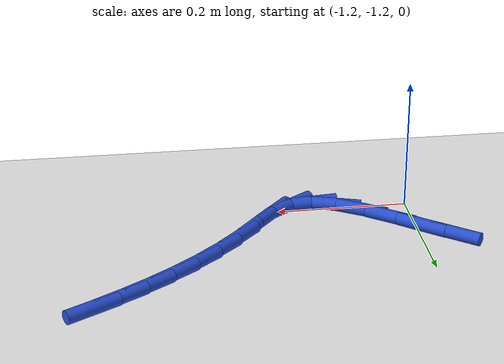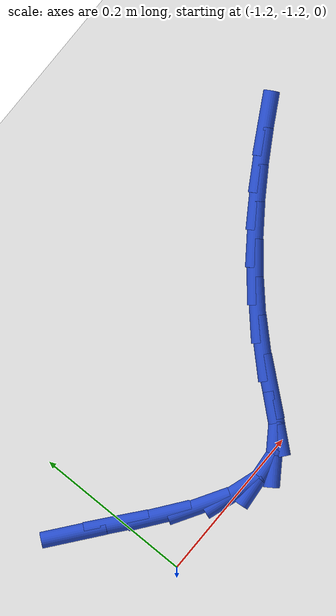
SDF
<sdf version="1.6">
 <world name="default">
  <model name="ground_plane">
   <static>1</static>
   <link name="link">
    <collision name="collision">
     <geometry><plane><normal>0 0 1</normal><size>100 100</size></plane></geometry>
     <surface><friction><ode><mu>100</mu><mu2>50</mu2></ode></friction></surface>
    </collision>
    <visual name="visual">
     <cast_shadows>0</cast_shadows>
     <geometry><plane><normal>0 0 1</normal><size>100 100</size></plane></geometry>
     <material>
      <script><uri>file://media/materials/scripts/gazebo.material</uri><name>Gazebo/WhiteGlow</name></script>
     </material>
    </visual>
   </link>
  </model>
  <model name="line">
   <link name="link_136">
    <pose>-1.247419800552623 -1.077596077627225 0.01 0 1.57 -0.6662749284851942</pose>
    <collision name="collision">
     <geometry><cylinder><radius>0.01</radius><length>0.08</length></cylinder></geometry>
    </collision>
    <visual name="visual">
     <material>
      <script><name>Gazebo/Blue</name><uri>file://media/materials/scripts/gazebo.material</uri></script>
     </material>
     <geometry><cylinder><radius>0.01</radius><length>0.08</length></cylinder></geometry>
    </visual>
   </link>
   <link name="link_137">
    <pose>-1.2055144284697183 -1.110542450474319 0.01 0 1.57 -0.6825828094133247</pose>
    <collision name="collision">
     <geometry><cylinder><radius>0.01</radius><length>0.08</length></cylinder></geometry>
    </collision>
    <visual name="visual">
     <material>
      <script><name>Gazebo/Blue</name><uri>file://media/materials/scripts/gazebo.material</uri></script>
     </material>
     <geometry><cylinder><radius>0.01</radius><length>0.08</length></cylinder></geometry>
    </visual>
   </link>
   <link name="link_138">
    <pose>-1.1647939355560804 -1.14364585430248 0.01 0 1.57 -0.6453315652387885</pose>
    <collision name="collision">
     <geometry><cylinder><radius>0.01</radius><length>0.08</length></cylinder></geometry>
    </collision>
    <visual name="visual">
     <material>
      <script><name>Gazebo/Blue</name><uri>file://media/materials/scripts/gazebo.material</uri></script>
     </material>
     <geometry><cylinder><radius>0.01</radius><length>0.08</length></cylinder></geometry>
    </visual>
   </link>
   <link name="link_139">
    <pose>-1.1255515140961205 -1.1731900616047861 0.01 0 1.57 -0.5362113577391693</pose>
    <collision name="collision">
     <geometry><cylinder><radius>0.01</radius><length>0.08</length></cylinder></geometry>
    </collision>
    <visual name="visual">
     <material>
      <script><name>Gazebo/Blue</name><uri>file://media/materials/scripts/gazebo.material</uri></script>
     </material>
     <geometry><cylinder><radius>0.01</radius><length>0.08</length></cylinder></geometry>
    </visual>
   </link>
   <link name="link_140">
    <pose>-1.0880803563742516 -1.195458844874315 0.01 0 1.57 -0.3083441784325784</pose>
    <collision name="collision">
     <geometry><cylinder><radius>0.01</radius><length>0.08</length></cylinder></geometry>
    </collision>
    <visual name="visual">
     <material>
      <script><name>Gazebo/Blue</name><uri>file://media/materials/scripts/gazebo.material</uri></script>
     </material>
     <geometry><cylinder><radius>0.01</radius><length>0.08</length></cylinder></geometry>
    </visual>
   </link>
   <link name="link_141">
    <pose>-1.0526736546748863 -1.206735976604144 0.01 0 1.57 0.1034372467338556</pose>
    <collision name="collision">
     <geometry><cylinder><radius>0.01</radius><length>0.08</length></cylinder></geometry>
    </collision>
    <visual name="visual">
     <material>
      <script><name>Gazebo/Blue</name><uri>file://media/materials/scripts/gazebo.material</uri></script>
     </material>
     <geometry><cylinder><radius>0.01</radius><length>0.08</length></cylinder></geometry>
    </visual>
   </link>
   <link name="link_142">
    <pose>-1.0196246012824364 -1.2033052292873498 0.01 0 1.57 0.6110779272327427</pose>
    <collision name="collision">
     <geometry><cylinder><radius>0.01</radius><length>0.08</length></cylinder></geometry>
    </collision>
    <visual name="visual">
     <material>
      <script><name>Gazebo/Blue</name><uri>file://media/materials/scripts/gazebo.material</uri></script>
     </material>
     <geometry><cylinder><radius>0.01</radius><length>0.08</length></cylinder></geometry>
    </visual>
   </link>
   <link name="link_143">
    <pose>-0.9891393370619359 -1.1819495531689137 0.01 0 1.57 0.8701128168166854</pose>
    <collision name="collision">
     <geometry><cylinder><radius>0.01</radius><length>0.08</length></cylinder></geometry>
    </collision>
    <visual name="visual">
     <material>
      <script><name>Gazebo/Blue</name><uri>file://media/materials/scripts/gazebo.material</uri></script>
     </material>
     <geometry><cylinder><radius>0.01</radius><length>0.08</length></cylinder></geometry>
    </visual>
   </link>
   <link name="link_144">
    <pose>-0.9600311382822584 -1.147438982710972 0.01 0 1.57 0.8873827751051636</pose>
    <collision name="collision">
     <geometry><cylinder><radius>0.01</radius><length>0.08</length></cylinder></geometry>
    </collision>
    <visual name="visual">
     <material>
      <script><name>Gazebo/Blue</name><uri>file://media/materials/scripts/gazebo.material</uri></script>
     </material>
     <geometry><cylinder><radius>0.01</radius><length>0.08</length></cylinder></geometry>
    </visual>
   </link>
   <link name="link_145">
    <pose>-0.9300645183828272 -1.1106395470636188 0.01 0 1.57 0.8190148147149227</pose>
    <collision name="collision">
     <geometry><cylinder><radius>0.01</radius><length>0.08</length></cylinder></geometry>
    </collision>
    <visual name="visual">
     <material>
      <script><name>Gazebo/Blue</name><uri>file://media/materials/scripts/gazebo.material</uri></script>
     </material>
     <geometry><cylinder><radius>0.01</radius><length>0.08</length></cylinder></geometry>
    </visual>
   </link>
   <link name="link_146">
    <pose>-0.8982722711299653 -1.076634584368884 0.01 0 1.57 0.7525055193684007</pose>
    <collision name="collision">
     <geometry><cylinder><radius>0.01</radius><length>0.08</length></cylinder></geometry>
    </collision>
    <visual name="visual">
     <material>
      <script><name>Gazebo/Blue</name><uri>file://media/materials/scripts/gazebo.material</uri></script>
     </material>
     <geometry><cylinder><radius>0.01</radius><length>0.08</length></cylinder></geometry>
    </visual>
   </link>
   <link name="link_147">
    <pose>-0.8648193257584506 -1.04531301284225 0.01 0 1.57 0.6918660637479017</pose>
    <collision name="collision">
     <geometry><cylinder><radius>0.01</radius><length>0.08</length></cylinder></geometry>
    </collision>
    <visual name="visual">
     <material>
      <script><name>Gazebo/Blue</name><uri>file://media/materials/scripts/gazebo.material</uri></script>
     </material>
     <geometry><cylinder><radius>0.01</radius><length>0.08</length></cylinder></geometry>
    </visual>
   </link>
   <link name="link_148">
    <pose>-0.8299084548054637 -1.0163901195308649 0.01 0 1.57 0.63789294483427</pose>
    <collision name="collision">
     <geometry><cylinder><radius>0.01</radius><length>0.08</length></cylinder></geometry>
    </collision>
    <visual name="visual">
     <material>
      <script><name>Gazebo/Blue</name><uri>file://media/materials/scripts/gazebo.material</uri></script>
     </material>
     <geometry><cylinder><radius>0.01</radius><length>0.08</length></cylinder></geometry>
    </visual>
   </link>
   <link name="link_149">
    <pose>-0.7937424308081882 -0.9895811914818784 0.01 0 1.57 0.5911100994159546</pose>
    <collision name="collision">
     <geometry><cylinder><radius>0.01</radius><length>0.08</length></cylinder></geometry>
    </collision>
    <visual name="visual">
     <material>
      <script><name>Gazebo/Blue</name><uri>file://media/materials/scripts/gazebo.material</uri></script>
     </material>
     <geometry><cylinder><radius>0.01</radius><length>0.08</length></cylinder></geometry>
    </visual>
   </link>
   <link name="link_150">
    <pose>-0.7565240263038047 -0.9646015157424405 0.01 0 1.57 0.5518201040372912</pose>
    <collision name="collision">
     <geometry><cylinder><radius>0.01</radius><length>0.08</length></cylinder></geometry>
    </collision>
    <visual name="visual">
     <material>
      <script><name>Gazebo/Blue</name><uri>file://media/materials/scripts/gazebo.material</uri></script>
     </material>
     <geometry><cylinder><radius>0.01</radius><length>0.08</length></cylinder></geometry>
    </visual>
   </link>
   <link name="link_151">
    <pose>-0.7184560138294951 -0.9411663793596998 0.01 0 1.57 0.5201685574060146</pose>
    <collision name="collision">
     <geometry><cylinder><radius>0.01</radius><length>0.08</length></cylinder></geometry>
    </collision>
    <visual name="visual">
     <material>
      <script><name>Gazebo/Blue</name><uri>file://media/materials/scripts/gazebo.material</uri></script>
     </material>
     <geometry><cylinder><radius>0.01</radius><length>0.08</length></cylinder></geometry>
    </visual>
   </link>
  </model>
 </world>
</sdf>
